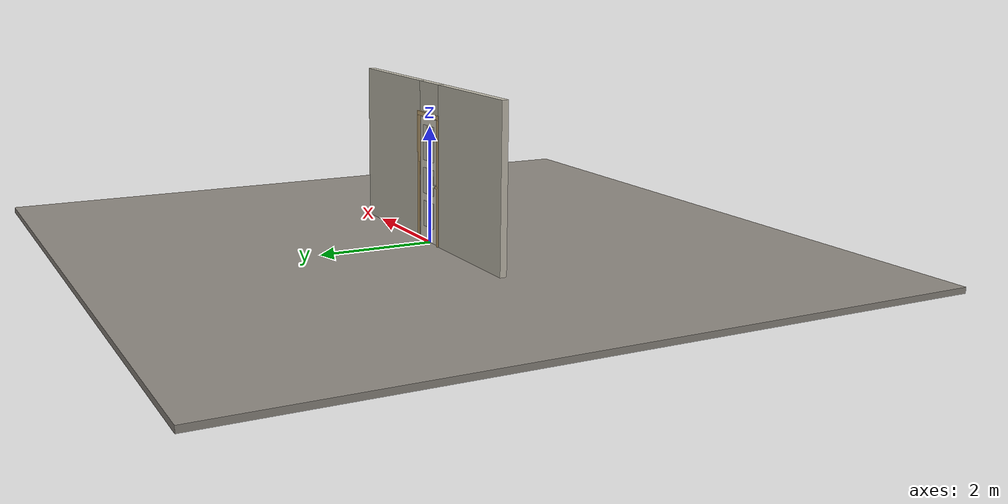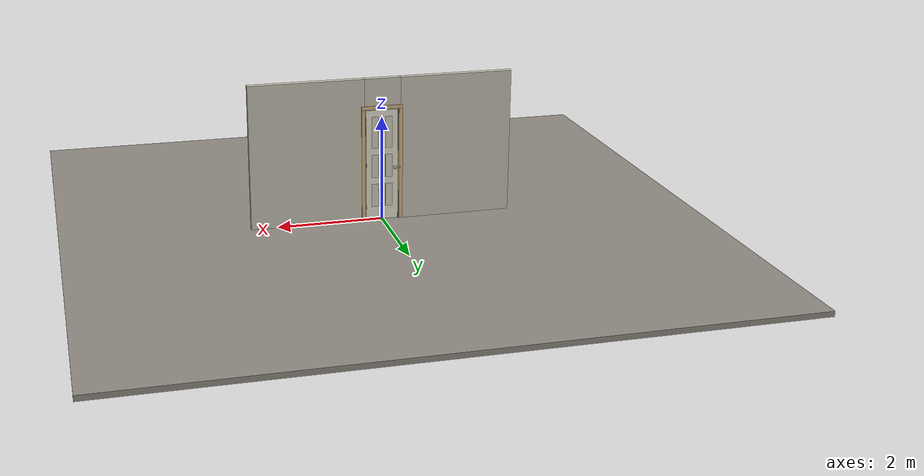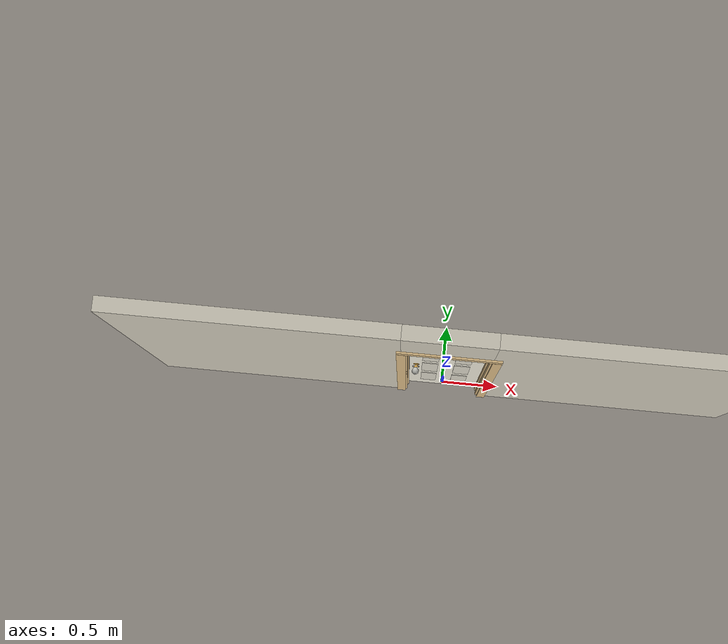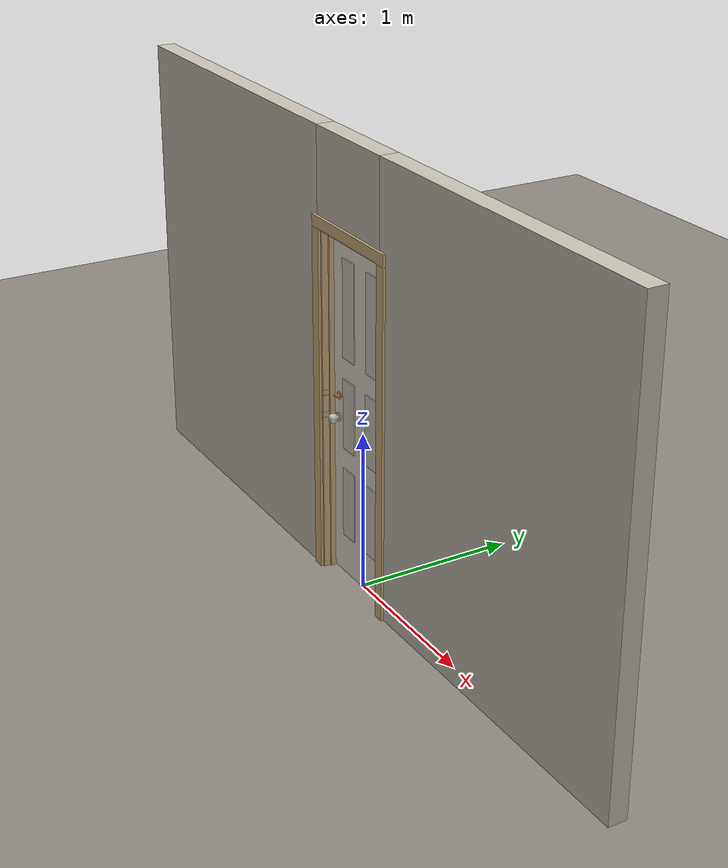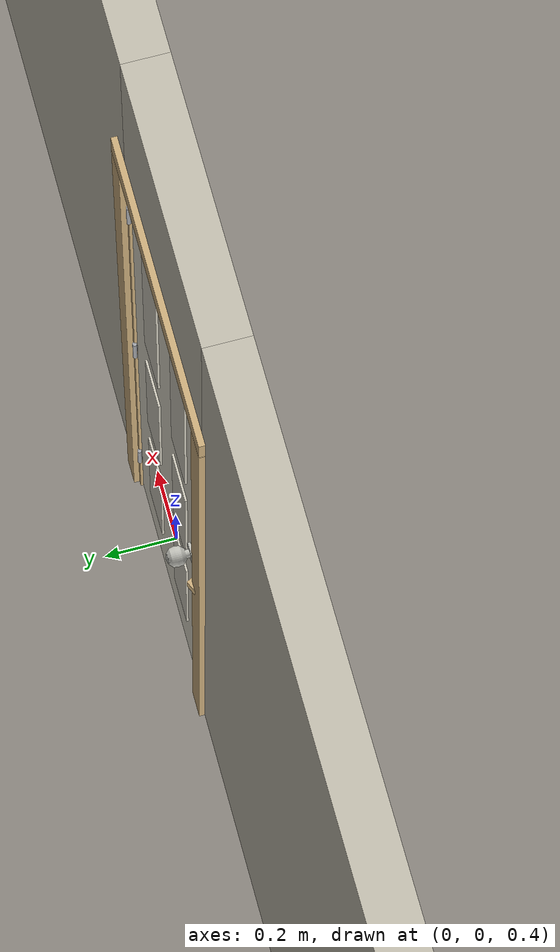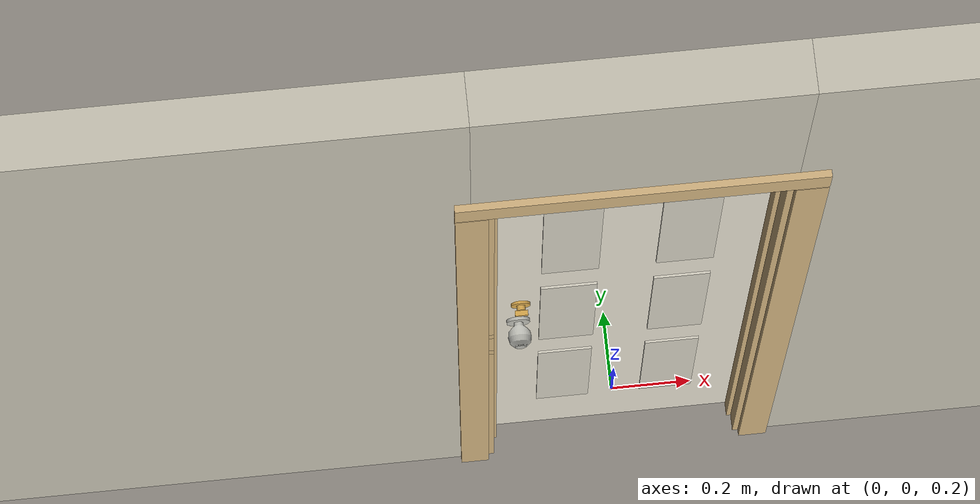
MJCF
<?xml version="1.0" ?>
<mujoco model="db0633_swing_single_full">
  <compiler angle="radian" meshdir="../../hardware" texturedir="../../textures" autolimits="true" inertiafromgeom="false"/>
  <option timestep="0.002" integrator="implicitfast" cone="elliptic" impratio="10" noslip_iterations="3">
    <flag multiccd="enable"/>
  </option>
  <size memory="16M"/>
  <default>
    <geom condim="4" solref="0.005 1" solimp="0.95 0.99 0.001"/>
    <joint solreflimit="0.005 1" solimplimit="0.95 0.99 0.001"/>
    <tendon solreflimit="0.005 1"/>
    <equality solref="0.002 1"/>
  </default>
  <visual>
    <headlight ambient="0.4 0.4 0.4" diffuse="0.7 0.7 0.7" specular="0.2 0.2 0.2"/>
    <quality shadowsize="4096"/>
    <map znear="0.01" zfar="60"/>
  </visual>
  <asset>
    <mesh name="hinge_96510cf394" file="hinge_96510cf394.obj"/>
    <mesh name="hinge_jamb_7fd4ca52b2" file="hinge_jamb_7fd4ca52b2.obj"/>
    <mesh name="knob_0ccd68d739" file="knob_0ccd68d739.obj"/>
    <mesh name="thumbturn_eb5c9899a3" file="thumbturn_eb5c9899a3.obj"/>
    <material name="mat_floor" rgba="0.55 0.53 0.5 1" specular="0.2" shininess="0.15" reflectance="0"/>
    <material name="mat_wall" rgba="0.78 0.76 0.7 1" specular="0.2" shininess="0.1" reflectance="0"/>
    <material name="mat_leaf" rgba="0.9 0.88 0.82 1" specular="0.2" shininess="0.58" reflectance="0"/>
    <material name="mat_leaf_panel" rgba="0.828 0.81 0.754 1" specular="0.2" shininess="0.58" reflectance="0"/>
    <material name="mat_hinge" rgba="0.65 0.66 0.68 1" specular="0.74" shininess="0.5" reflectance="0.36"/>
    <material name="mat_op_hpl" rgba="0.75 0.75 0.72 1" specular="0.2" shininess="0.65" reflectance="0"/>
    <material name="mat_trim" rgba="0.85 0.66 0.3 1" specular="0.8" shininess="0.75" reflectance="0.4"/>
    <material name="mat_bolt" rgba="0.85 0.66 0.3 1" specular="0.8" shininess="0.75" reflectance="0.4"/>
    <material name="mat_deadbolt" rgba="0.85 0.66 0.3 1" specular="0.8" shininess="0.75" reflectance="0.4"/>
    <material name="mat_frame" rgba="0.82 0.7 0.5 1" specular="0.2" shininess="0.45" reflectance="0"/>
    <material name="mat_seal" rgba="0.1 0.1 0.1 1" specular="0.2" shininess="0.1" reflectance="0"/>
    <texture name="skybox" type="skybox" builtin="gradient" rgb1="0.6 0.7 0.85" rgb2="0.9 0.92 0.95" width="256" height="256"/>
  </asset>
  <worldbody>
    <light name="sun" pos="1.5 -2.5 4" dir="-0.3 0.5 -0.8" directional="true" diffuse="0.8 0.8 0.8" specular="0.3 0.3 0.3" castshadow="true"/>
    <light name="fill" pos="-1.5 2.5 3" dir="0.3 -0.5 -0.7" directional="true" diffuse="0.35 0.35 0.4" castshadow="false"/>
    <camera name="robot_view" pos="0 -2.670812 1.812087" xyaxes="1 0 0 0 0.26963 0.962964" fovy="52"/>
    <camera name="far_view" pos="0 2.604812 1.812087" xyaxes="-1 0 0 0 -0.26963 0.962964" fovy="52"/>
    <camera name="iso" pos="-2.004737 -2.248762 2.234138" xyaxes="0.741536 -0.670913 0 0.242917 0.268487 0.932151" fovy="46"/>
    <camera name="detail_handle" pos="-0.0645 -0.86375 1.296" xyaxes="0.97561 0.219512 0 -0.070934 0.315262 0.94635" fovy="38"/>
    <geom name="floor" type="box" size="6 6 0.05" pos="0 0 -0.05" material="mat_floor" group="0" contype="1" conaffinity="1" friction="0.8 0.005 0.0001" density="2400"/>
    <geom name="wall_left" type="box" size="1.07125 0.0575 1.3735" pos="-1.42875 -0.033 1.3735" material="mat_wall" group="0" contype="1" conaffinity="1" friction="0.6 0.005 0.0001" density="800"/>
    <geom name="wall_right" type="box" size="1.08625 0.0575 1.3735" pos="1.41375 -0.033 1.3735" material="mat_wall" group="0" contype="1" conaffinity="1" friction="0.6 0.005 0.0001" density="800"/>
    <geom name="wall_header" type="box" size="0.3425 0.0575 0.2755" pos="-0.015 -0.033 2.4715" material="mat_wall" group="0" contype="1" conaffinity="1" friction="0.6 0.005 0.0001" density="800"/>
    <geom name="hinge_0_jamb" type="mesh" mesh="hinge_jamb_7fd4ca52b2" pos="0.3055 0.0245 0.259" quat="0 0 0 1" material="mat_hinge" group="1" contype="0" conaffinity="0" density="7850"/>
    <geom name="hinge_1_jamb" type="mesh" mesh="hinge_jamb_7fd4ca52b2" pos="0.3055 0.0245 1.076" quat="0 0 0 1" material="mat_hinge" group="1" contype="0" conaffinity="0" density="7850"/>
    <geom name="hinge_2_jamb" type="mesh" mesh="hinge_jamb_7fd4ca52b2" pos="0.3055 0.0245 1.963" quat="0 0 0 1" material="mat_hinge" group="1" contype="0" conaffinity="0" density="7850"/>
    <geom name="leaf_deadbolt_strike_b" type="box" size="0.0155 0.003 0.0005" pos="-0.308 0 1.1375" quat="0.5 0.5 0.5 0.5" material="mat_deadbolt" group="1" contype="0" conaffinity="0" density="7800"/>
    <geom name="leaf_deadbolt_strike_l" type="box" size="0.003 0.0155 0.0005" pos="-0.308 -0.0125 1.156" quat="0.5 0.5 0.5 0.5" material="mat_deadbolt" group="1" contype="0" conaffinity="0" density="7800"/>
    <geom name="leaf_deadbolt_strike_t" type="box" size="0.0155 0.003 0.0005" pos="-0.308 0 1.1745" quat="0.5 0.5 0.5 0.5" material="mat_deadbolt" group="1" contype="0" conaffinity="0" density="7800"/>
    <geom name="leaf_deadbolt_strike_r" type="box" size="0.003 0.0155 0.0005" pos="-0.308 0.0125 1.156" quat="0.5 0.5 0.5 0.5" material="mat_deadbolt" group="1" contype="0" conaffinity="0" density="7800"/>
    <geom name="jamb_hinge" type="box" size="0.0095 0.0575 1.0735" pos="0.318 -0.033 1.0735" material="mat_frame" group="0" contype="1" conaffinity="1" friction="0.6 0.005 0.0001" density="400"/>
    <geom name="strike_1016_wall_n" type="box" size="0.0245 0.041325 0.0167" pos="-0.333 -0.049175 1.016" material="mat_frame" group="0" contype="1" conaffinity="1" friction="0.6 0.005 0.0001" density="400"/>
    <geom name="strike_1016_wall_p" type="box" size="0.0245 0.008 0.0167" pos="-0.333 0.01585 1.016" material="mat_frame" group="0" contype="1" conaffinity="1" friction="0.6 0.005 0.0001" density="400"/>
    <geom name="strike_1016_ramp" type="box" size="0.0245 0.01649 0.0167" pos="-0.337636 0.028673 1.016" quat="0.977148 0 0 0.212558" material="mat_frame" group="0" contype="1" conaffinity="1" friction="0.12 0.005 0.0001" density="400"/>
    <geom name="strike_1016_back" type="box" size="0.01615 0.00785 0.0167" pos="-0.34135 0 1.016" material="mat_frame" group="0" contype="1" conaffinity="1" friction="0.6 0.005 0.0001" density="400"/>
    <geom name="strike_1156_wall_n" type="box" size="0.0245 0.0405 0.0155" pos="-0.333 -0.05 1.156" material="mat_frame" group="0" contype="1" conaffinity="1" friction="0.6 0.005 0.0001" density="400"/>
    <geom name="strike_1156_wall_p" type="box" size="0.0245 0.0075 0.0155" pos="-0.333 0.017 1.156" material="mat_frame" group="0" contype="1" conaffinity="1" friction="0.6 0.005 0.0001" density="400"/>
    <geom name="strike_1156_back" type="box" size="0.0098 0.0095 0.0155" pos="-0.3477 0 1.156" material="mat_frame" group="0" contype="1" conaffinity="1" friction="0.6 0.005 0.0001" density="400"/>
    <geom name="jamb_strike_0" type="box" size="0.0245 0.0575 0.49965" pos="-0.333 -0.033 0.49965" material="mat_frame" group="0" contype="1" conaffinity="1" friction="0.6 0.005 0.0001" density="400"/>
    <geom name="jamb_strike_1" type="box" size="0.0245 0.0575 0.0539" pos="-0.333 -0.033 1.0866" material="mat_frame" group="0" contype="1" conaffinity="1" friction="0.6 0.005 0.0001" density="400"/>
    <geom name="jamb_strike_2" type="box" size="0.0245 0.0575 0.48775" pos="-0.333 -0.033 1.65925" material="mat_frame" group="0" contype="1" conaffinity="1" friction="0.6 0.005 0.0001" density="400"/>
    <geom name="jamb_head" type="box" size="0.3425 0.0575 0.0095" pos="-0.015 -0.033 2.1565" material="mat_frame" group="0" contype="1" conaffinity="1" friction="0.6 0.005 0.0001" density="400"/>
    <geom name="head_stud" type="box" size="0.3425 0.0575 0.015" pos="-0.015 -0.033 2.181" material="mat_wall" group="0" contype="1" conaffinity="1" friction="0.6 0.005 0.0001" density="500"/>
    <geom name="stop_hinge" type="box" size="0.0055 0.016 1.0735" pos="0.303 -0.034 1.0735" material="mat_frame" group="0" contype="1" conaffinity="1" friction="0.6 0.005 0.0001" density="400"/>
    <geom name="stop_strike" type="box" size="0.0055 0.016 1.0735" pos="-0.303 -0.034 1.0735" material="mat_frame" group="0" contype="1" conaffinity="1" friction="0.6 0.005 0.0001" density="400"/>
    <geom name="stop_head" type="box" size="0.3085 0.016 0.0055" pos="0 -0.034 2.1415" material="mat_frame" group="0" contype="1" conaffinity="1" friction="0.6 0.005 0.0001" density="400"/>
    <geom name="seal_hinge" type="box" size="0.004 0.0015 1.0735" pos="0.3055 -0.019 1.0735" material="mat_seal" group="1" contype="0" conaffinity="0" density="1100"/>
    <geom name="seal_strike" type="box" size="0.004 0.0015 1.0735" pos="-0.3055 -0.019 1.0735" material="mat_seal" group="1" contype="0" conaffinity="0" density="1100"/>
    <geom name="seal_head" type="box" size="0.2885 0.0015 0.008" pos="0 -0.019 2.135" material="mat_seal" group="1" contype="0" conaffinity="0" density="1100"/>
    <geom name="casing_l_n" type="box" size="0.035 0.008 1.083" pos="-0.3575 -0.0985 1.0735" material="mat_frame" group="2" contype="0" conaffinity="0" density="400"/>
    <geom name="casing_r_n" type="box" size="0.035 0.008 1.083" pos="0.3575 -0.0985 1.0735" material="mat_frame" group="2" contype="0" conaffinity="0" density="400"/>
    <geom name="casing_h_n" type="box" size="0.3925 0.008 0.035" pos="0 -0.0985 2.196" material="mat_frame" group="2" contype="0" conaffinity="0" density="400"/>
    <geom name="casing_l_p" type="box" size="0.035 0.008 1.083" pos="-0.3575 0.0325 1.0735" material="mat_frame" group="2" contype="0" conaffinity="0" density="400"/>
    <geom name="casing_r_p" type="box" size="0.035 0.008 1.083" pos="0.3575 0.0325 1.0735" material="mat_frame" group="2" contype="0" conaffinity="0" density="400"/>
    <geom name="casing_h_p" type="box" size="0.3925 0.008 0.035" pos="0 0.0325 2.196" material="mat_frame" group="2" contype="0" conaffinity="0" density="400"/>
    <site name="approach_point" pos="0 -1.5 0" quat="1 0 0 0" size="0.05" rgba="0.2 0.9 0.2 0.5" group="4"/>
    <site name="goal_point" pos="0 1.5 0" quat="1 0 0 0" size="0.05" rgba="0.2 0.9 0.2 0.5" group="4"/>
    <site name="door_plane_center" pos="0 0 1.0735" quat="1 0 0 0" size="0.02" rgba="0.2 0.9 0.2 0.5" group="4"/>
    <body name="leaf" pos="0.3085 0 0">
      <inertial pos="-0.304618 0.000174 1.076296" mass="34.170675" quat="0.499646 0.500469 -0.499525 0.500358" diaginertia="1.089682842 13.003578467 14.086067387"/>
      <joint name="leaf_hinge" type="hinge" axis="0 0 -1" pos="-0.003 0.0245 0" limited="true" range="0 1.745329" solreflimit="0.02 1" damping="0.103362" frictionloss="1.006488" armature="0.02"/>
      <geom name="leaf_slab" type="box" size="0.305 0.0175 1.067" pos="-0.308 0 1.076" material="mat_leaf" group="0" contype="1" conaffinity="1" friction="0.4 0.005 0.0001" density="1"/>
      <geom name="leaf_panel_0_n" type="box" size="0.065 0.003 0.221884" pos="-0.178 -0.0205 0.485624" material="mat_leaf_panel" group="1" contype="0" conaffinity="0" density="1"/>
      <geom name="leaf_panel_0_p" type="box" size="0.065 0.003 0.221884" pos="-0.178 0.0205 0.485624" material="mat_leaf_panel" group="1" contype="0" conaffinity="0" density="1"/>
      <geom name="leaf_panel_1_n" type="box" size="0.065 0.003 0.221884" pos="-0.438 -0.0205 0.485624" material="mat_leaf_panel" group="1" contype="0" conaffinity="0" density="1"/>
      <geom name="leaf_panel_1_p" type="box" size="0.065 0.003 0.221884" pos="-0.438 0.0205 0.485624" material="mat_leaf_panel" group="1" contype="0" conaffinity="0" density="1"/>
      <geom name="leaf_panel_2_n" type="box" size="0.065 0.003 0.221884" pos="-0.178 -0.0205 1.059392" material="mat_leaf_panel" group="1" contype="0" conaffinity="0" density="1"/>
      <geom name="leaf_panel_2_p" type="box" size="0.065 0.003 0.221884" pos="-0.178 0.0205 1.059392" material="mat_leaf_panel" group="1" contype="0" conaffinity="0" density="1"/>
      <geom name="leaf_panel_3_n" type="box" size="0.065 0.003 0.221884" pos="-0.438 -0.0205 1.059392" material="mat_leaf_panel" group="1" contype="0" conaffinity="0" density="1"/>
      <geom name="leaf_panel_3_p" type="box" size="0.065 0.003 0.221884" pos="-0.438 0.0205 1.059392" material="mat_leaf_panel" group="1" contype="0" conaffinity="0" density="1"/>
      <geom name="leaf_panel_4_n" type="box" size="0.065 0.003 0.302512" pos="-0.178 -0.0205 1.713788" material="mat_leaf_panel" group="1" contype="0" conaffinity="0" density="1"/>
      <geom name="leaf_panel_4_p" type="box" size="0.065 0.003 0.302512" pos="-0.178 0.0205 1.713788" material="mat_leaf_panel" group="1" contype="0" conaffinity="0" density="1"/>
      <geom name="leaf_panel_5_n" type="box" size="0.065 0.003 0.302512" pos="-0.438 -0.0205 1.713788" material="mat_leaf_panel" group="1" contype="0" conaffinity="0" density="1"/>
      <geom name="leaf_panel_5_p" type="box" size="0.065 0.003 0.302512" pos="-0.438 0.0205 1.713788" material="mat_leaf_panel" group="1" contype="0" conaffinity="0" density="1"/>
      <geom name="hinge_0" type="mesh" mesh="hinge_96510cf394" pos="-0.003 0.0245 0.259" quat="0 0 0 1" material="mat_hinge" group="1" contype="0" conaffinity="0" density="7850"/>
      <geom name="hinge_1" type="mesh" mesh="hinge_96510cf394" pos="-0.003 0.0245 1.076" quat="0 0 0 1" material="mat_hinge" group="1" contype="0" conaffinity="0" density="7850"/>
      <geom name="hinge_2" type="mesh" mesh="hinge_96510cf394" pos="-0.003 0.0245 1.963" quat="0 0 0 1" material="mat_hinge" group="1" contype="0" conaffinity="0" density="7850"/>
      <geom name="leaf_latch_bolt_faceplate" type="box" size="0.0006 0.01235 0.0267" pos="-0.6124 0 1.016" material="mat_bolt" group="1" contype="0" conaffinity="0" density="8500"/>
      <geom name="leaf_deadbolt_faceplate" type="box" size="0.0006 0.014 0.0245" pos="-0.6124 0 1.156" material="mat_deadbolt" group="1" contype="0" conaffinity="0" density="8500"/>
      <site name="leaf_edge_mid" pos="-0.613 0 1.067" quat="1 0 0 0" size="0.02" rgba="0.2 0.9 0.2 0.5" group="4"/>
      <body name="leaf_handle" pos="-0.553 0 1.016">
        <inertial pos="0 0 0" mass="1.150081" quat="0.707107 0 0 -0.707107" diaginertia="0.000298658 0.003840959 0.003840959"/>
        <joint name="leaf_handle_hinge" type="hinge" axis="0 1 0" limited="true" range="0 0.85" damping="0.128366" frictionloss="0.032" stiffness="0.4" springref="-0.5" armature="0.01"/>
        <geom name="leaf_handle_spindle" type="cylinder" size="0.006 0.0255" pos="0 0 0" quat="0.707107 -0.707107 0 0" material="mat_op_hpl" group="1" contype="0" conaffinity="0" density="7850"/>
        <geom name="leaf_handle_knob_n" type="mesh" mesh="knob_0ccd68d739" pos="0 -0.0175 0" quat="0 0 -0.707107 0.707107" material="mat_op_hpl" group="1" contype="0" conaffinity="0" density="3000"/>
        <geom name="leaf_handle_knob_col_n" type="sphere" size="0.02475" pos="0 -0.06375 0" material="mat_op_hpl" group="0" contype="1" conaffinity="1" friction="0.9 0.01 0.0001" density="3000"/>
        <geom name="leaf_handle_knob_neck_n" type="cylinder" size="0.011 0.012" pos="0 -0.0295 0" quat="0.707107 -0.707107 0 0" material="mat_op_hpl" group="3" contype="1" conaffinity="1" rgba="0.8 0.3 0.3 0.25" friction="0.6 0.005 0.0001" density="3000"/>
        <geom name="leaf_handle_knob_p" type="mesh" mesh="knob_0ccd68d739" pos="0 0.0175 0" quat="0 0 0.707107 0.707107" material="mat_op_hpl" group="1" contype="0" conaffinity="0" density="3000"/>
        <geom name="leaf_handle_knob_col_p" type="sphere" size="0.02475" pos="0 0.06375 0" material="mat_op_hpl" group="0" contype="1" conaffinity="1" friction="0.9 0.01 0.0001" density="3000"/>
        <geom name="leaf_handle_knob_neck_p" type="cylinder" size="0.011 0.012" pos="0 0.0295 0" quat="0.707107 -0.707107 0 0" material="mat_op_hpl" group="3" contype="1" conaffinity="1" rgba="0.8 0.3 0.3 0.25" friction="0.6 0.005 0.0001" density="3000"/>
        <site name="leaf_handle_grip_n" pos="0 -0.06375 0" quat="1 0 0 0" size="0.012" rgba="0.2 0.9 0.2 0.5" group="4"/>
        <site name="leaf_handle_grip_p" pos="0 0.06375 0" quat="1 0 0 0" size="0.012" rgba="0.2 0.9 0.2 0.5" group="4"/>
      </body>
      <body name="leaf_latch_bolt" pos="-0.613 0 1.016">
        <inertial pos="0.00865 0 0" mass="0.041419" quat="0.92388 0.382683 0 0" diaginertia="0.000000798 0.000005598 0.000005598"/>
        <joint name="leaf_latch_bolt_slide" type="slide" axis="1 0 0" limited="true" range="0 0.0127" damping="2" frictionloss="0.3" stiffness="300" springref="-0.008333" armature="0.1"/>
        <geom name="leaf_latch_bolt_capsule" type="capsule" size="0.00635 0.015" pos="0.00865 0 0" quat="0.707107 0 -0.707107 0" material="mat_bolt" group="0" contype="1" conaffinity="1" friction="0.2 0.005 0.0001" density="8500"/>
      </body>
      <body name="leaf_deadbolt" pos="-0.613 0 1.156">
        <inertial pos="0.0277 0 0" mass="0.18836" quat="0 0 0.707107 0.707107" diaginertia="0.000013829 0.000052194 0.000057986"/>
        <joint name="leaf_deadbolt_slide" type="slide" axis="1 0 0" limited="true" range="0 0.0254" damping="5" frictionloss="1.5" armature="0.1" ref="0.0254"/>
        <geom name="leaf_deadbolt_box" type="box" size="0.0277 0.008 0.0125" pos="0.0277 0 0" material="mat_deadbolt" group="0" contype="1" conaffinity="1" friction="0.3 0.005 0.0001" density="8500"/>
      </body>
      <body name="leaf_deadbolt_thumbturn" pos="-0.548 -0.0175 1.156">
        <inertial pos="0 -0.012928 0" mass="0.178946" quat="0.707107 0.000001 0.000001 0.707107" diaginertia="0.000026045 0.000026215 0.000032438"/>
        <joint name="leaf_deadbolt_thumbturn_hinge" type="hinge" axis="0 1 0" limited="true" range="0 1.5708" damping="0.05" frictionloss="0.3" armature="0.005" ref="1.5708"/>
        <geom name="leaf_deadbolt_thumbturn_mesh" type="mesh" mesh="thumbturn_eb5c9899a3" pos="0 0 0" quat="0.500001 0.500001 -0.499999 0.499999" material="mat_deadbolt" group="0" contype="1" conaffinity="1" friction="0.6 0.005 0.0001" density="7100"/>
        <geom name="leaf_deadbolt_thumbturn_col" type="box" size="0.006 0.012 0.016" pos="0 -0.02 0" quat="0.707105 0 0.707108 0" material="mat_deadbolt" group="3" contype="1" conaffinity="1" rgba="0.8 0.3 0.3 0.25" friction="0.6 0.005 0.0001" density="7100"/>
      </body>
    </body>
  </worldbody>
  <tendon>
    <fixed name="leaf_latch_bolt_coupling" limited="true" range="0 10">
      <joint joint="leaf_latch_bolt_slide" coef="1"/>
      <joint joint="leaf_handle_hinge" coef="-0.016933"/>
    </fixed>
  </tendon>
  <equality>
    <joint name="leaf_deadbolt_couple" joint1="leaf_deadbolt_slide" joint2="leaf_deadbolt_thumbturn_hinge" polycoef="0 0.01617 0 0 0" active="true"/>
  </equality>
  <contact>
    <exclude body1="leaf_deadbolt" body2="leaf_deadbolt_thumbturn"/>
  </contact>
  <sensor>
    <jointpos name="leaf_hinge_pos" joint="leaf_hinge"/>
    <jointvel name="leaf_hinge_vel" joint="leaf_hinge"/>
    <jointpos name="leaf_handle_hinge_pos" joint="leaf_handle_hinge"/>
    <jointvel name="leaf_handle_hinge_vel" joint="leaf_handle_hinge"/>
    <jointpos name="leaf_latch_bolt_slide_pos" joint="leaf_latch_bolt_slide"/>
    <jointvel name="leaf_latch_bolt_slide_vel" joint="leaf_latch_bolt_slide"/>
    <jointpos name="leaf_deadbolt_slide_pos" joint="leaf_deadbolt_slide"/>
    <jointvel name="leaf_deadbolt_slide_vel" joint="leaf_deadbolt_slide"/>
    <jointpos name="leaf_deadbolt_thumbturn_hinge_pos" joint="leaf_deadbolt_thumbturn_hinge"/>
    <jointvel name="leaf_deadbolt_thumbturn_hinge_vel" joint="leaf_deadbolt_thumbturn_hinge"/>
  </sensor>
</mujoco>
